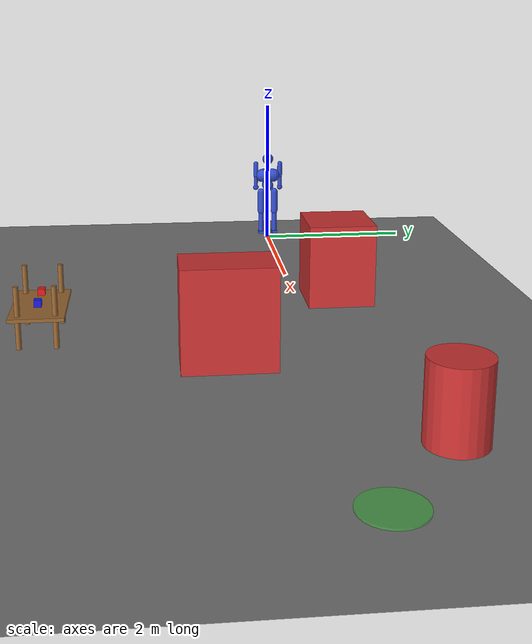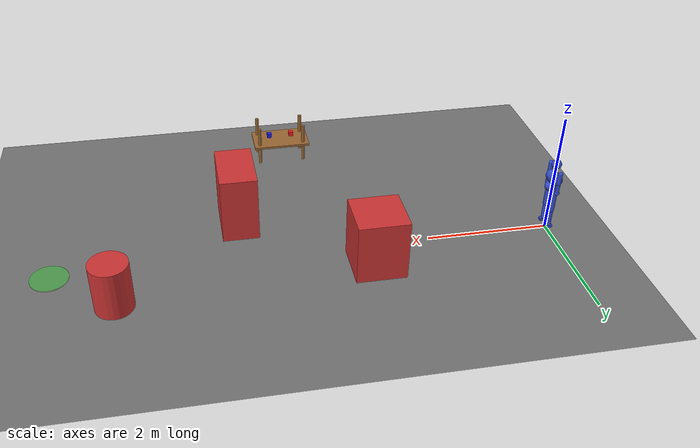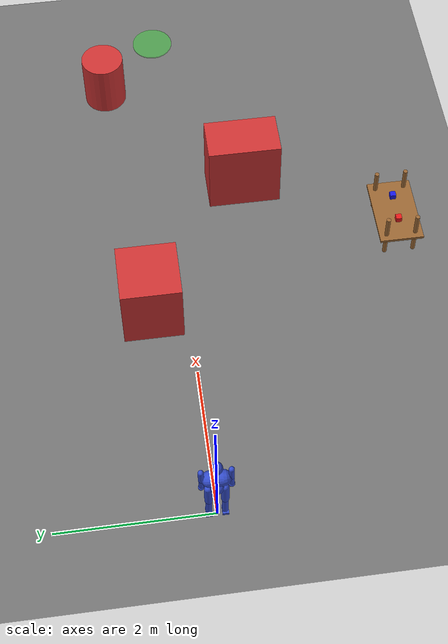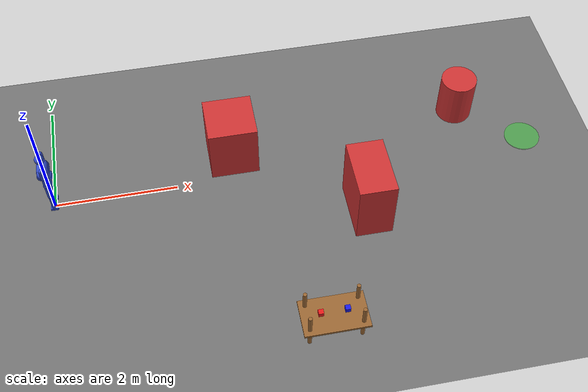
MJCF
<mujoco model="unitree_g1_obstacle_navigation">
  <compiler angle="radian" autolimits="true"/>
  <visual>
    <global offwidth="1920" offheight="1080"/>
  </visual>
  <option timestep="0.002" gravity="0 0 -9.81" integrator="implicit"/>

  <default>
    <joint armature="0.01" damping="0.5"/>
    <geom condim="4" friction="1.0 0.005 0.0001"/>
    <motor ctrllimited="true" ctrlrange="-1 1"/>
  </default>

  <asset>
    <texture name="grid" type="2d" builtin="checker" rgb1="0.4 0.4 0.4" rgb2="0.5 0.5 0.5" width="512" height="512"/>
    <material name="grid_mat" texture="grid" texrepeat="10 10" reflectance="0.1"/>
    <material name="robot_mat" rgba="0.2 0.3 0.8 1"/>
    <material name="obstacle_mat" rgba="0.8 0.2 0.2 1"/>
    <material name="goal_mat" rgba="0.2 0.8 0.2 0.5"/>
    <material name="red_cube" rgba="0.9 0.1 0.1 1"/>
    <material name="blue_cube" rgba="0.1 0.1 0.9 1"/>
    <material name="table_mat" rgba="0.6 0.4 0.2 1"/>
  </asset>

  <worldbody>
    <!-- Ground plane -->
    <geom name="ground" type="plane" size="20 20 0.1" material="grid_mat"/>
    <light name="top" pos="0 0 10" dir="0 0 -1"/>
    <light name="side" pos="5 5 8" dir="-1 -1 -2"/>

    <!-- G1 Humanoid (simplified bipedal, 29 DOF) -->
    <body name="pelvis" pos="0 0 0.75">
      <freejoint name="root"/>
      <site name="pelvis_site" pos="0 0 0" size="0.01"/>
      <inertial mass="8.5" pos="0 0 0" diaginertia="0.15 0.15 0.15"/>
      <geom name="pelvis_geom" type="capsule" size="0.08" fromto="-0.05 0 0.05 0.05 0 0.05" material="robot_mat"/>

      <!-- Torso -->
      <body name="torso" pos="0 0 0.2">
        <inertial mass="12.0" pos="0 0 0.1" diaginertia="0.3 0.3 0.3"/>
        <joint name="torso_pitch" type="hinge" axis="1 0 0" range="-0.5 0.5"/>
        <geom name="torso_geom" type="capsule" size="0.1" fromto="0 -0.08 0 0 0.08 0" material="robot_mat"/>

        <!-- Head -->
        <body name="head" pos="0 0 0.25">
          <inertial mass="2.0" pos="0 0 0" diaginertia="0.02 0.02 0.02"/>
          <joint name="head_yaw" type="hinge" axis="0 0 1" range="-1 1"/>
          <geom name="head_geom" type="sphere" size="0.08" material="robot_mat"/>
        </body>

        <!-- Left arm -->
        <body name="left_shoulder" pos="0 0.18 0.18">
          <inertial mass="1.5" pos="0 0 -0.1" diaginertia="0.02 0.02 0.02"/>
          <joint name="l_shoulder_pitch" type="hinge" axis="1 0 0" range="-2 2"/>
          <joint name="l_shoulder_roll" type="hinge" axis="0 1 0" range="-1.5 1.5"/>
          <geom name="l_upper_arm" type="capsule" size="0.035" fromto="0 0 0 0 0 -0.18" material="robot_mat"/>

          <body name="left_elbow" pos="0 0 -0.18">
            <inertial mass="1.0" pos="0 0 -0.1" diaginertia="0.01 0.01 0.01"/>
            <joint name="l_elbow_pitch" type="hinge" axis="1 0 0" range="-2.5 0"/>
            <geom name="l_forearm" type="capsule" size="0.03" fromto="0 0 0 0 0 -0.18" material="robot_mat"/>

            <body name="left_hand" pos="0 0 -0.18">
              <inertial mass="0.5" pos="0 0 0" diaginertia="0.005 0.005 0.005"/>
              <geom name="l_hand" type="sphere" size="0.04" material="robot_mat"/>
            </body>
          </body>
        </body>

        <!-- Right arm -->
        <body name="right_shoulder" pos="0 -0.18 0.18">
          <inertial mass="1.5" pos="0 0 -0.1" diaginertia="0.02 0.02 0.02"/>
          <joint name="r_shoulder_pitch" type="hinge" axis="1 0 0" range="-2 2"/>
          <joint name="r_shoulder_roll" type="hinge" axis="0 1 0" range="-1.5 1.5"/>
          <geom name="r_upper_arm" type="capsule" size="0.035" fromto="0 0 0 0 0 -0.18" material="robot_mat"/>

          <body name="right_elbow" pos="0 0 -0.18">
            <inertial mass="1.0" pos="0 0 -0.1" diaginertia="0.01 0.01 0.01"/>
            <joint name="r_elbow_pitch" type="hinge" axis="1 0 0" range="-2.5 0"/>
            <geom name="r_forearm" type="capsule" size="0.03" fromto="0 0 0 0 0 -0.18" material="robot_mat"/>

            <body name="right_hand" pos="0 0 -0.18">
              <inertial mass="0.5" pos="0 0 0" diaginertia="0.005 0.005 0.005"/>
              <geom name="r_hand" type="sphere" size="0.04" material="robot_mat"/>
            </body>
          </body>
        </body>
      </body>

      <!-- Left leg -->
      <body name="left_hip" pos="0 0.1 -0.05">
        <inertial mass="2.0" pos="0 0 -0.15" diaginertia="0.03 0.03 0.03"/>
        <joint name="l_hip_roll" type="hinge" axis="0 1 0" range="-0.5 1.5"/>
        <joint name="l_hip_pitch" type="hinge" axis="1 0 0" range="-1.5 1"/>
        <geom name="l_thigh" type="capsule" size="0.05" fromto="0 0 0 0 0 -0.3" material="robot_mat"/>

        <body name="left_knee" pos="0 0 -0.3">
          <inertial mass="1.5" pos="0 0 -0.15" diaginertia="0.02 0.02 0.02"/>
          <joint name="l_knee" type="hinge" axis="1 0 0" range="-2.5 0"/>
          <geom name="l_shin" type="capsule" size="0.04" fromto="0 0 0 0 0 -0.3" material="robot_mat"/>

          <body name="left_ankle" pos="0 0 -0.3">
            <inertial mass="1.0" pos="0 0 -0.02" diaginertia="0.01 0.01 0.01"/>
            <joint name="l_ankle_pitch" type="hinge" axis="1 0 0" range="-1 1"/>
            <geom name="l_foot" type="box" size="0.06 0.04 0.02" pos="0 0 -0.02" material="robot_mat"/>
          </body>
        </body>
      </body>

      <!-- Right leg -->
      <body name="right_hip" pos="0 -0.1 -0.05">
        <inertial mass="2.0" pos="0 0 -0.15" diaginertia="0.03 0.03 0.03"/>
        <joint name="r_hip_roll" type="hinge" axis="0 1 0" range="-1.5 0.5"/>
        <joint name="r_hip_pitch" type="hinge" axis="1 0 0" range="-1.5 1"/>
        <geom name="r_thigh" type="capsule" size="0.05" fromto="0 0 0 0 0 -0.3" material="robot_mat"/>

        <body name="right_knee" pos="0 0 -0.3">
          <inertial mass="1.5" pos="0 0 -0.15" diaginertia="0.02 0.02 0.02"/>
          <joint name="r_knee" type="hinge" axis="1 0 0" range="-2.5 0"/>
          <geom name="r_shin" type="capsule" size="0.04" fromto="0 0 0 0 0 -0.3" material="robot_mat"/>

          <body name="right_ankle" pos="0 0 -0.3">
            <inertial mass="1.0" pos="0 0 -0.02" diaginertia="0.01 0.01 0.01"/>
            <joint name="r_ankle_pitch" type="hinge" axis="1 0 0" range="-1 1"/>
            <geom name="r_foot" type="box" size="0.06 0.04 0.02" pos="0 0 -0.02" material="robot_mat"/>
          </body>
        </body>
      </body>
    </body>

    <!-- Obstacles for navigation -->
    <body name="obstacle_1" pos="3.0 0.5 0.5" mocap="true">
      <geom name="obs1" type="box" size="0.4 0.4 0.5" material="obstacle_mat"/>
    </body>
    <body name="obstacle_2" pos="5.0 -1.0 0.5" mocap="true">
      <geom name="obs2" type="box" size="0.3 0.5 0.6" material="obstacle_mat"/>
    </body>
    <body name="obstacle_3" pos="7.0 0.8 0.4" mocap="true">
      <geom name="obs3" type="cylinder" size="0.3 0.4" material="obstacle_mat"/>
    </body>

    <!-- Table for pick-and-place -->
    <body name="table" pos="4.0 -3.0 0.35">
      <geom name="table_top" type="box" size="0.5 0.3 0.02" material="table_mat"/>
      <geom name="table_leg1" type="cylinder" size="0.03 0.35" pos="0.4 0.2 0" material="table_mat"/>
      <geom name="table_leg2" type="cylinder" size="0.03 0.35" pos="-0.4 0.2 0" material="table_mat"/>
      <geom name="table_leg3" type="cylinder" size="0.03 0.35" pos="0.4 -0.2 0" material="table_mat"/>
      <geom name="table_leg4" type="cylinder" size="0.03 0.35" pos="-0.4 -0.2 0" material="table_mat"/>
    </body>

    <!-- Pick-and-place objects -->
    <body name="red_cube" pos="3.8 -3.0 0.45">
      <freejoint name="red_cube_joint"/>
      <inertial mass="0.1" pos="0 0 0" diaginertia="0.001 0.001 0.001"/>
      <geom name="red_cube_geom" type="box" size="0.04 0.04 0.04" material="red_cube"/>
    </body>
    <body name="blue_cube" pos="4.2 -3.0 0.45">
      <freejoint name="blue_cube_joint"/>
      <inertial mass="0.1" pos="0 0 0" diaginertia="0.001 0.001 0.001"/>
      <geom name="blue_cube_geom" type="box" size="0.04 0.04 0.04" material="blue_cube"/>
    </body>

    <!-- Goal marker -->
    <body name="goal" pos="8.0 0 0.01">
      <geom name="goal_geom" type="cylinder" size="0.3 0.01" material="goal_mat"/>
    </body>
  </worldbody>

  <!-- Actuators for locomotion -->
  <actuator>
    <general name="ctrl_vx" joint="root" gainprm="100" gear="1 0 0 0 0 0"/>
    <general name="ctrl_vy" joint="root" gainprm="100" gear="0 1 0 0 0 0"/>
    <general name="ctrl_wz" joint="root" gainprm="50" gear="0 0 0 0 0 1"/>
    <position name="torso_pitch_ctrl" joint="torso_pitch" kp="100"/>
    <position name="l_shoulder_pitch_ctrl" joint="l_shoulder_pitch" kp="50"/>
    <position name="l_shoulder_roll_ctrl" joint="l_shoulder_roll" kp="50"/>
    <position name="l_elbow_ctrl" joint="l_elbow_pitch" kp="30"/>
    <position name="r_shoulder_pitch_ctrl" joint="r_shoulder_pitch" kp="50"/>
    <position name="r_shoulder_roll_ctrl" joint="r_shoulder_roll" kp="50"/>
    <position name="r_elbow_ctrl" joint="r_elbow_pitch" kp="30"/>
    <position name="l_hip_roll_ctrl" joint="l_hip_roll" kp="100"/>
    <position name="l_hip_pitch_ctrl" joint="l_hip_pitch" kp="100"/>
    <position name="l_knee_ctrl" joint="l_knee" kp="100"/>
    <position name="l_ankle_ctrl" joint="l_ankle_pitch" kp="50"/>
    <position name="r_hip_roll_ctrl" joint="r_hip_roll" kp="100"/>
    <position name="r_hip_pitch_ctrl" joint="r_hip_pitch" kp="100"/>
    <position name="r_knee_ctrl" joint="r_knee" kp="100"/>
    <position name="r_ankle_ctrl" joint="r_ankle_pitch" kp="50"/>
  </actuator>

  <!-- Sensors -->
  <sensor>
    <framepos name="pelvis_pos" objtype="body" objname="pelvis"/>
    <framequat name="pelvis_quat" objtype="body" objname="pelvis"/>
    <velocimeter name="pelvis_vel" site="pelvis_site"/>
  </sensor>

  <!-- Key frames -->
  <keyframe>
    <key name="standing" qpos="0 0 0.75 1 0 0 0 0 0 0 0 0 0 0 0 0 0 0 0 0 0 0 0 0 0 0 0 0 0 0 0 0 0 0 0 0"/>
  </keyframe>
</mujoco>
